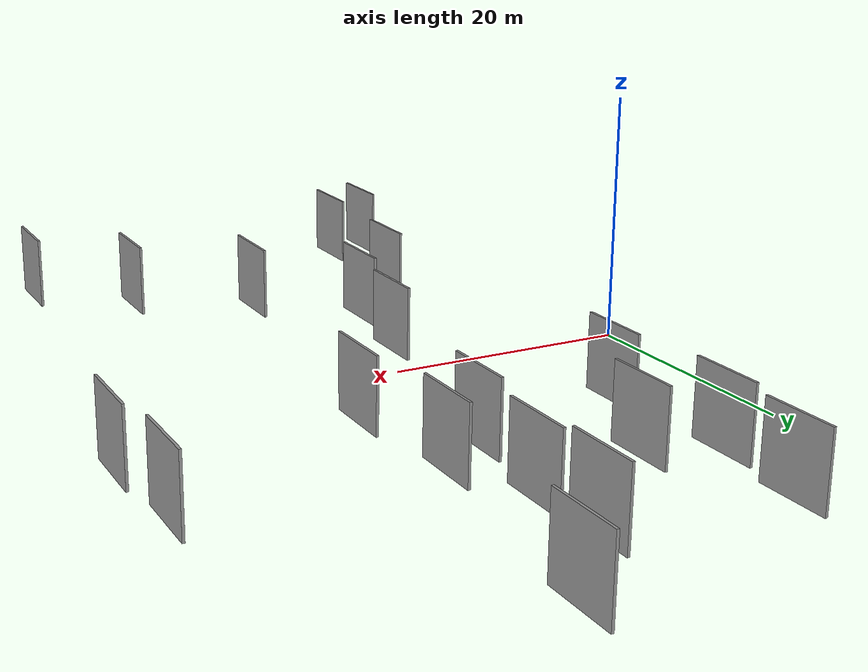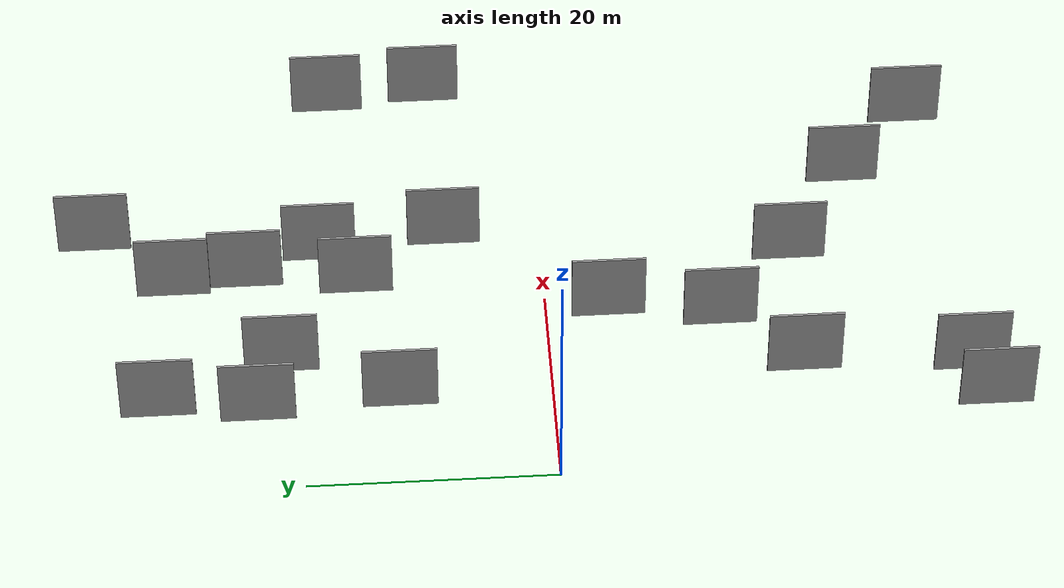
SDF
<sdf version="1.6">
 <world name="default">
  <scene>
   <sky><clouds><speed>12</speed></clouds></sky>
   <ambient>0.4 0.4 0.4 1</ambient>
   <background>0.7 0.7 0.7 1</background>
   <shadows>1</shadows>
  </scene>
  <gravity>0 0 -9.8066</gravity>
  <magnetic_field>6e-06 2.3e-05 -4.2e-05</magnetic_field>
  <physics default="0" name="default_physics" type="ode">
   <ode>
    <solver>
     <type>quick</type>
     <iters>10</iters>
     <sor>1.0</sor>
     <use_dynamic_moi_rescaling>0</use_dynamic_moi_rescaling>
    </solver>
    <constraints>
     <cfm>0</cfm>
     <erp>0.2</erp>
     <contact_max_correcting_vel>100</contact_max_correcting_vel>
     <contact_surface_layer>0.001</contact_surface_layer>
    </constraints>
   </ode>
   <max_step_size>0.004</max_step_size>
   <real_time_factor>1</real_time_factor>
   <real_time_update_rate>250</real_time_update_rate>
  </physics>
  <light name="sun" type="directional">
   <pose>0 0 10 0 0 0</pose>
   <diffuse>0.8 0.8 0.8 1</diffuse>
   <specular>0.2 0.2 0.2 1</specular>
   <attenuation>
    <range>1000</range>
    <constant>0.9</constant>
    <linear>0.01</linear>
    <quadratic>0.001</quadratic>
   </attenuation>
   <direction>-0.5 0.1 -0.9</direction>
  </light>
  <model name="grey_wall_1">
   <static>1</static>
   <pose>27.3750 7.9756 0.0 0.000000 0.000000 1.570796</pose>
   <link name="link">
    <pose>0 0 3.00 0 0 0</pose>
    <collision name="collision"><geometry><box><size>6.00 0.2 6.00</size></box></geometry></collision>
    <visual name="visual">
     <cast_shadows>0</cast_shadows>
     <geometry><box><size>6.00 0.2 6.00</size></box></geometry>
     <material>
      <script>
       <uri>model://grey_wall/materials/scripts</uri>
       <uri>model://grey_wall/materials/textures</uri>
       <name>vrc/grey_wall</name>
      </script>
     </material>
    </visual>
   </link>
  </model>
  <model name="grey_wall_2">
   <static>1</static>
   <pose>28.4250 36.9319 0.0 0.000000 0.000000 1.570796</pose>
   <link name="link">
    <pose>0 0 3.00 0 0 0</pose>
    <collision name="collision"><geometry><box><size>6.00 0.2 6.00</size></box></geometry></collision>
    <visual name="visual">
     <cast_shadows>0</cast_shadows>
     <geometry><box><size>6.00 0.2 6.00</size></box></geometry>
     <material>
      <script>
       <uri>model://grey_wall/materials/scripts</uri>
       <uri>model://grey_wall/materials/textures</uri>
       <name>vrc/grey_wall</name>
      </script>
     </material>
    </visual>
   </link>
  </model>
  <model name="grey_wall_3">
   <static>1</static>
   <pose>21.9895 15.3984 0.0 0.000000 0.000000 1.570796</pose>
   <link name="link">
    <pose>0 0 3.00 0 0 0</pose>
    <collision name="collision"><geometry><box><size>6.00 0.2 6.00</size></box></geometry></collision>
    <visual name="visual">
     <cast_shadows>0</cast_shadows>
     <geometry><box><size>6.00 0.2 6.00</size></box></geometry>
     <material>
      <script>
       <uri>model://grey_wall/materials/scripts</uri>
       <uri>model://grey_wall/materials/textures</uri>
       <name>vrc/grey_wall</name>
      </script>
     </material>
    </visual>
   </link>
  </model>
  <model name="grey_wall_4">
   <static>1</static>
   <pose>13.1419 21.6490 0.0 0.000000 0.000000 1.570796</pose>
   <link name="link">
    <pose>0 0 3.00 0 0 0</pose>
    <collision name="collision"><geometry><box><size>6.00 0.2 6.00</size></box></geometry></collision>
    <visual name="visual">
     <cast_shadows>0</cast_shadows>
     <geometry><box><size>6.00 0.2 6.00</size></box></geometry>
     <material>
      <script>
       <uri>model://grey_wall/materials/scripts</uri>
       <uri>model://grey_wall/materials/textures</uri>
       <name>vrc/grey_wall</name>
      </script>
     </material>
    </visual>
   </link>
  </model>
  <model name="grey_wall_5">
   <static>1</static>
   <pose>9.8800 -33.7076 0.0 0.000000 0.000000 1.570796</pose>
   <link name="link">
    <pose>0 0 3.00 0 0 0</pose>
    <collision name="collision"><geometry><box><size>6.00 0.2 6.00</size></box></geometry></collision>
    <visual name="visual">
     <cast_shadows>0</cast_shadows>
     <geometry><box><size>6.00 0.2 6.00</size></box></geometry>
     <material>
      <script>
       <uri>model://grey_wall/materials/scripts</uri>
       <uri>model://grey_wall/materials/textures</uri>
       <name>vrc/grey_wall</name>
      </script>
     </material>
    </visual>
   </link>
  </model>
  <model name="grey_wall_6">
   <static>1</static>
   <pose>16.3582 -14.0604 0.0 0.000000 0.000000 1.570796</pose>
   <link name="link">
    <pose>0 0 3.00 0 0 0</pose>
    <collision name="collision"><geometry><box><size>6.00 0.2 6.00</size></box></geometry></collision>
    <visual name="visual">
     <cast_shadows>0</cast_shadows>
     <geometry><box><size>6.00 0.2 6.00</size></box></geometry>
     <material>
      <script>
       <uri>model://grey_wall/materials/scripts</uri>
       <uri>model://grey_wall/materials/textures</uri>
       <name>vrc/grey_wall</name>
      </script>
     </material>
    </visual>
   </link>
  </model>
  <model name="grey_wall_7">
   <static>1</static>
   <pose>10.6067 -20.3190 0.0 0.000000 0.000000 1.570796</pose>
   <link name="link">
    <pose>0 0 3.00 0 0 0</pose>
    <collision name="collision"><geometry><box><size>6.00 0.2 6.00</size></box></geometry></collision>
    <visual name="visual">
     <cast_shadows>0</cast_shadows>
     <geometry><box><size>6.00 0.2 6.00</size></box></geometry>
     <material>
      <script>
       <uri>model://grey_wall/materials/scripts</uri>
       <uri>model://grey_wall/materials/textures</uri>
       <name>vrc/grey_wall</name>
      </script>
     </material>
    </visual>
   </link>
  </model>
  <model name="grey_wall_8">
   <static>1</static>
   <pose>45.6491 8.9044 0.0 0.000000 0.000000 1.570796</pose>
   <link name="link">
    <pose>0 0 3.00 0 0 0</pose>
    <collision name="collision"><geometry><box><size>6.00 0.2 6.00</size></box></geometry></collision>
    <visual name="visual">
     <cast_shadows>0</cast_shadows>
     <geometry><box><size>6.00 0.2 6.00</size></box></geometry>
     <material>
      <script>
       <uri>model://grey_wall/materials/scripts</uri>
       <uri>model://grey_wall/materials/textures</uri>
       <name>vrc/grey_wall</name>
      </script>
     </material>
    </visual>
   </link>
  </model>
  <model name="grey_wall_9">
   <static>1</static>
   <pose>23.7692 -20.4588 0.0 0.000000 0.000000 1.570796</pose>
   <link name="link">
    <pose>0 0 3.00 0 0 0</pose>
    <collision name="collision"><geometry><box><size>6.00 0.2 6.00</size></box></geometry></collision>
    <visual name="visual">
     <cast_shadows>0</cast_shadows>
     <geometry><box><size>6.00 0.2 6.00</size></box></geometry>
     <material>
      <script>
       <uri>model://grey_wall/materials/scripts</uri>
       <uri>model://grey_wall/materials/textures</uri>
       <name>vrc/grey_wall</name>
      </script>
     </material>
    </visual>
   </link>
  </model>
  <model name="grey_wall_10">
   <static>1</static>
   <pose>44.8782 17.2333 0.0 0.000000 0.000000 1.570796</pose>
   <link name="link">
    <pose>0 0 3.00 0 0 0</pose>
    <collision name="collision"><geometry><box><size>6.00 0.2 6.00</size></box></geometry></collision>
    <visual name="visual">
     <cast_shadows>0</cast_shadows>
     <geometry><box><size>6.00 0.2 6.00</size></box></geometry>
     <material>
      <script>
       <uri>model://grey_wall/materials/scripts</uri>
       <uri>model://grey_wall/materials/textures</uri>
       <name>vrc/grey_wall</name>
      </script>
     </material>
    </visual>
   </link>
  </model>
  <model name="grey_wall_11">
   <static>1</static>
   <pose>33.0308 -26.0129 0.0 0.000000 0.000000 1.570796</pose>
   <link name="link">
    <pose>0 0 3.00 0 0 0</pose>
    <collision name="collision"><geometry><box><size>6.00 0.2 6.00</size></box></geometry></collision>
    <visual name="visual">
     <cast_shadows>0</cast_shadows>
     <geometry><box><size>6.00 0.2 6.00</size></box></geometry>
     <material>
      <script>
       <uri>model://grey_wall/materials/scripts</uri>
       <uri>model://grey_wall/materials/textures</uri>
       <name>vrc/grey_wall</name>
      </script>
     </material>
    </visual>
   </link>
  </model>
  <model name="grey_wall_12">
   <static>1</static>
   <pose>23.2267 24.4072 0.0 0.000000 0.000000 1.570796</pose>
   <link name="link">
    <pose>0 0 3.00 0 0 0</pose>
    <collision name="collision"><geometry><box><size>6.00 0.2 6.00</size></box></geometry></collision>
    <visual name="visual">
     <cast_shadows>0</cast_shadows>
     <geometry><box><size>6.00 0.2 6.00</size></box></geometry>
     <material>
      <script>
       <uri>model://grey_wall/materials/scripts</uri>
       <uri>model://grey_wall/materials/textures</uri>
       <name>vrc/grey_wall</name>
      </script>
     </material>
    </visual>
   </link>
  </model>
  <model name="grey_wall_13">
   <static>1</static>
   <pose>7.7175 23.6009 0.0 0.000000 0.000000 1.570796</pose>
   <link name="link">
    <pose>0 0 3.00 0 0 0</pose>
    <collision name="collision"><geometry><box><size>6.00 0.2 6.00</size></box></geometry></collision>
    <visual name="visual">
     <cast_shadows>0</cast_shadows>
     <geometry><box><size>6.00 0.2 6.00</size></box></geometry>
     <material>
      <script>
       <uri>model://grey_wall/materials/scripts</uri>
       <uri>model://grey_wall/materials/textures</uri>
       <name>vrc/grey_wall</name>
      </script>
     </material>
    </visual>
   </link>
  </model>
  <model name="grey_wall_14">
   <static>1</static>
   <pose>40.3252 -32.2121 0.0 0.000000 0.000000 1.570796</pose>
   <link name="link">
    <pose>0 0 3.00 0 0 0</pose>
    <collision name="collision"><geometry><box><size>6.00 0.2 6.00</size></box></geometry></collision>
    <visual name="visual">
     <cast_shadows>0</cast_shadows>
     <geometry><box><size>6.00 0.2 6.00</size></box></geometry>
     <material>
      <script>
       <uri>model://grey_wall/materials/scripts</uri>
       <uri>model://grey_wall/materials/textures</uri>
       <name>vrc/grey_wall</name>
      </script>
     </material>
    </visual>
   </link>
  </model>
  <model name="grey_wall_15">
   <static>1</static>
   <pose>5.8313 -35.1774 0.0 0.000000 0.000000 1.570796</pose>
   <link name="link">
    <pose>0 0 3.00 0 0 0</pose>
    <collision name="collision"><geometry><box><size>6.00 0.2 6.00</size></box></geometry></collision>
    <visual name="visual">
     <cast_shadows>0</cast_shadows>
     <geometry><box><size>6.00 0.2 6.00</size></box></geometry>
     <material>
      <script>
       <uri>model://grey_wall/materials/scripts</uri>
       <uri>model://grey_wall/materials/textures</uri>
       <name>vrc/grey_wall</name>
      </script>
     </material>
    </visual>
   </link>
  </model>
  <model name="grey_wall_16">
   <static>1</static>
   <pose>22.5663 30.3537 0.0 0.000000 0.000000 1.570796</pose>
   <link name="link">
    <pose>0 0 3.00 0 0 0</pose>
    <collision name="collision"><geometry><box><size>6.00 0.2 6.00</size></box></geometry></collision>
    <visual name="visual">
     <cast_shadows>0</cast_shadows>
     <geometry><box><size>6.00 0.2 6.00</size></box></geometry>
     <material>
      <script>
       <uri>model://grey_wall/materials/scripts</uri>
       <uri>model://grey_wall/materials/textures</uri>
       <name>vrc/grey_wall</name>
      </script>
     </material>
    </visual>
   </link>
  </model>
  <model name="grey_wall_17">
   <static>1</static>
   <pose>17.9577 -5.0651 0.0 0.000000 0.000000 1.570796</pose>
   <link name="link">
    <pose>0 0 3.00 0 0 0</pose>
    <collision name="collision"><geometry><box><size>6.00 0.2 6.00</size></box></geometry></collision>
    <visual name="visual">
     <cast_shadows>0</cast_shadows>
     <geometry><box><size>6.00 0.2 6.00</size></box></geometry>
     <material>
      <script>
       <uri>model://grey_wall/materials/scripts</uri>
       <uri>model://grey_wall/materials/textures</uri>
       <name>vrc/grey_wall</name>
      </script>
     </material>
    </visual>
   </link>
  </model>
  <model name="grey_wall_18">
   <static>1</static>
   <pose>8.6416 12.2719 0.0 0.000000 0.000000 1.570796</pose>
   <link name="link">
    <pose>0 0 3.00 0 0 0</pose>
    <collision name="collision"><geometry><box><size>6.00 0.2 6.00</size></box></geometry></collision>
    <visual name="visual">
     <cast_shadows>0</cast_shadows>
     <geometry><box><size>6.00 0.2 6.00</size></box></geometry>
     <material>
      <script>
       <uri>model://grey_wall/materials/scripts</uri>
       <uri>model://grey_wall/materials/textures</uri>
       <name>vrc/grey_wall</name>
      </script>
     </material>
    </visual>
   </link>
  </model>
  <model name="grey_wall_19">
   <static>1</static>
   <pose>26.1121 18.3290 0.0 0.000000 0.000000 1.570796</pose>
   <link name="link">
    <pose>0 0 3.00 0 0 0</pose>
    <collision name="collision"><geometry><box><size>6.00 0.2 6.00</size></box></geometry></collision>
    <visual name="visual">
     <cast_shadows>0</cast_shadows>
     <geometry><box><size>6.00 0.2 6.00</size></box></geometry>
     <material>
      <script>
       <uri>model://grey_wall/materials/scripts</uri>
       <uri>model://grey_wall/materials/textures</uri>
       <name>vrc/grey_wall</name>
      </script>
     </material>
    </visual>
   </link>
  </model>
  <model name="grey_wall_20">
   <static>1</static>
   <pose>8.6814 31.5360 0.0 0.000000 0.000000 1.570796</pose>
   <link name="link">
    <pose>0 0 3.00 0 0 0</pose>
    <collision name="collision"><geometry><box><size>6.00 0.2 6.00</size></box></geometry></collision>
    <visual name="visual">
     <cast_shadows>0</cast_shadows>
     <geometry><box><size>6.00 0.2 6.00</size></box></geometry>
     <material>
      <script>
       <uri>model://grey_wall/materials/scripts</uri>
       <uri>model://grey_wall/materials/textures</uri>
       <name>vrc/grey_wall</name>
      </script>
     </material>
    </visual>
   </link>
  </model>
 </world>
</sdf>
